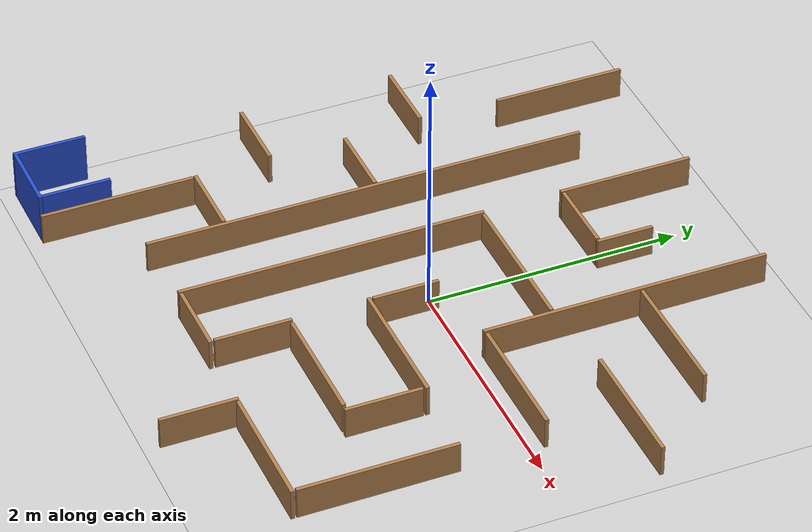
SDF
<sdf version="1.6">
 <world name="default">
  <light name="sun" type="directional">
   <pose>0 0 10 0 -0 0</pose>
   <diffuse>0.8 0.8 0.8 1</diffuse>
   <specular>0.2 0.2 0.2 1</specular>
   <attenuation>
    <range>1000</range>
    <constant>0.9</constant>
    <linear>0.01</linear>
    <quadratic>0.001</quadratic>
   </attenuation>
   <direction>-0.5 0.1 -0.9</direction>
  </light>
  <gravity>0 0 -9.8</gravity>
  <magnetic_field>6e-06 2.3e-05 -4.2e-05</magnetic_field>
  <atmosphere type="adiabatic"/>
  <physics name="default_physics" default="0" type="ode">
   <max_step_size>0.001</max_step_size>
   <real_time_factor>1</real_time_factor>
   <real_time_update_rate>1000</real_time_update_rate>
  </physics>
  <scene><ambient>0.4 0.4 0.4 1</ambient><background>0.7 0.7 0.7 1</background><shadows>1</shadows></scene>
  <spherical_coordinates>
   <surface_model>EARTH_WGS84</surface_model>
   <latitude_deg>0</latitude_deg>
   <longitude_deg>0</longitude_deg>
   <elevation>0</elevation>
   <heading_deg>0</heading_deg>
  </spherical_coordinates>
  <include><uri>model://maze_nav_floor</uri></include>
  <include><uri>model://maze_nav_walls</uri></include>
 </world>
</sdf>

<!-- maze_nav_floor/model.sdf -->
<sdf version="1.4">
<model name="maze_nav_floor">
  <static>true</static>
    <link name="link">
      <collision name="collision">
        <geometry>
          <plane>
            <normal>0 0 1</normal>
            <size>5.0 5.0</size>
          </plane>
        </geometry>
        <surface>
          <friction>
            <ode>
              <mu>100</mu>
              <mu2>50</mu2>
            </ode>
          </friction>
        </surface>
      </collision>
      <visual name="visual">
        <cast_shadows>false</cast_shadows>
        <geometry>
          <plane>
            <normal>0 0 1</normal>
            <size>5.0 5.0</size>
          </plane>
        </geometry>
        <material>
          <script>
            <uri>model://maze_nav_floor/materials/scripts</uri>
            <uri>model://maze_nav_floor/materials/textures</uri>
            <name>MazeNavFloor/Image</name>
          </script>
        </material>
      </visual>
    </link>
  </model>
</sdf>

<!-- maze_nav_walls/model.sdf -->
<sdf version='1.6'>
  <model name='maze_nav_walls'>
    <pose frame=''>0 0 0.125 0 0 0</pose>
    <link name='SZ_Right_Wall'>
      <pose frame=''>-2.37275 -2.09516 0.075 0 0 1.5708</pose>
      <collision name='Right_Wall_Collision'>
        <geometry>
          <box>
            <size>0.57 0.03 0.4</size>
          </box>
        </geometry>
      </collision>
      <visual name='Right_Wall_Visual'>
        <geometry>
          <box>
            <size>0.57 0.03 0.4</size>
          </box>
        </geometry>
        <material>
          <script>
            <uri>file://media/materials/scripts/gazebo.material</uri>
            <name>Gazebo/Blue</name>
          </script>
        </material>
      </visual>
    </link>
    <link name='SZ_Back_Wall'>
      <pose frame=''>-2.07275 -2.36516 0.075 0 0 0</pose>
      <collision name='Back_Wall_Collision'>
        <geometry>
          <box>
            <size>0.57 0.03 0.4</size>
          </box>
        </geometry>
      </collision>
      <visual name='Back_Wall_Visual'>
        <geometry>
          <box>
            <size>0.57 0.03 0.4</size>
          </box>
        </geometry>
        <material>
          <script>
            <uri>file://media/materials/scripts/gazebo.material</uri>
            <name>Gazebo/Blue</name>
          </script>
        </material>
      </visual>
    </link>
    <link name='SZ_Left_Wall'>
      <pose frame=''>-1.80275 -2.08016 0.075 0 0 1.5708</pose>
      <collision name='Left_Wall_Collision'>
        <geometry>
          <box>
            <size>0.54 0.03 0.4</size>
          </box>
        </geometry>
      </collision>
      <visual name='Left_Wall_Visual'>
        <geometry>
          <box>
            <size>0.54 0.03 0.4</size>
          </box>
        </geometry>
        <material>
          <script>
            <uri>file://media/materials/scripts/gazebo.material</uri>
            <name>Gazebo/Blue</name>
          </script>
        </material>
      </visual>
    </link>
    <link name='Wall_00'>
      <collision name='Wall_00_Collision'>
        <geometry>
          <box>
            <size>1.21 0.03 0.25</size>
          </box>
        </geometry>
        <pose frame=''>0 0 0 0 0 0</pose>
      </collision>
      <visual name='Wall_00_Visual'>
        <pose frame=''>0 0 0 0 0 0</pose>
        <geometry>
          <box>
            <size>1.21 0.03 0.25</size>
          </box>
        </geometry>
        <material>
          <script>
            <uri>file://media/materials/scripts/gazebo.material</uri>
            <name>Gazebo/Wood</name>
          </script>
          <ambient>1 1 1 1</ambient>
        </material>
      </visual>
      <pose frame=''>-1.762 -1.775 0 0 0 1.5708</pose>
    </link>
    <link name='Wall_01'>
      <collision name='Wall_01_Collision'>
        <geometry>
          <box>
            <size>0.60 0.03 0.25</size>
          </box>
        </geometry>
        <pose frame=''>0 0 0 0 0 0</pose>
      </collision>
      <visual name='Wall_01_Visual'>
        <pose frame=''>0 0 0 0 0 0</pose>
        <geometry>
          <box>
            <size>0.60 0.03 0.25</size>
          </box>
        </geometry>
        <material>
          <script>
            <uri>file://media/materials/scripts/gazebo.material</uri>
            <name>Gazebo/Wood</name>
          </script>
          <ambient>1 1 1 1</ambient>
        </material>
      </visual>
      <pose frame=''>-1.476 -1.148 0 0 0 0</pose>
    </link>
    <link name='Wall_02'>
      <collision name='Wall_02_Collision'>
        <geometry>
          <box>
            <size>3.52 0.03 0.25</size>
          </box>
        </geometry>
        <pose frame=''>0 0 0 0 0 0</pose>
      </collision>
      <visual name='Wall_02_Visual'>
        <pose frame=''>0 0 0 0 0 0</pose>
        <geometry>
          <box>
            <size>3.52 0.03 0.25</size>
          </box>
        </geometry>
        <material>
          <script>
            <uri>file://media/materials/scripts/gazebo.material</uri>
            <name>Gazebo/Wood</name>
          </script>
          <ambient>1 1 1 1</ambient>
        </material>
      </visual>
      <pose frame=''>-1.149 -0.013 0 0 0 1.5708</pose>
    </link>
    <link name='Wall_03'>
      <collision name='Wall_03_Collision'>
        <geometry>
          <box>
            <size>0.60 0.03 0.25</size>
          </box>
        </geometry>
        <pose frame=''>0 0 0 0 0 0</pose>
      </collision>
      <visual name='Wall_03_Visual'>
        <pose frame=''>0 0 0 0 0 0</pose>
        <geometry>
          <box>
            <size>0.60 0.03 0.25</size>
          </box>
        </geometry>
        <material>
          <script>
            <uri>file://media/materials/scripts/gazebo.material</uri>
            <name>Gazebo/Wood</name>
          </script>
          <ambient>1 1 1 1</ambient>
        </material>
      </visual>
      <pose frame=''>-2.085 -0.541 0 0 0 0</pose>
    </link>
    <link name='Wall_04'>
      <collision name='Wall_04_Collision'>
        <geometry>
          <box>
            <size>0.60 0.03 0.25</size>
          </box>
        </geometry>
        <pose frame=''>0 0 0 0 0 0</pose>
      </collision>
      <visual name='Wall_04_Visual'>
        <pose frame=''>0 0 0 0 0 0</pose>
        <geometry>
          <box>
            <size>0.60 0.03 0.25</size>
          </box>
        </geometry>
        <material>
          <script>
            <uri>file://media/materials/scripts/gazebo.material</uri>
            <name>Gazebo/Wood</name>
          </script>
          <ambient>1 1 1 1</ambient>
        </material>
      </visual>
      <pose frame=''>-1.473 0.067 0 0 0 0</pose>
    </link>
    <link name='Wall_05'>
      <collision name='Wall_05_Collision'>
        <geometry>
          <box>
            <size>0.60 0.03 0.25</size>
          </box>
        </geometry>
        <pose frame=''>0 0 0 0 0 0</pose>
      </collision>
      <visual name='Wall_05_Visual'>
        <pose frame=''>0 0 0 0 0 0</pose>
        <geometry>
          <box>
            <size>0.60 0.03 0.25</size>
          </box>
        </geometry>
        <material>
          <script>
            <uri>file://media/materials/scripts/gazebo.material</uri>
            <name>Gazebo/Wood</name>
          </script>
          <ambient>1 1 1 1</ambient>
        </material>
      </visual>
      <pose frame=''>-2.085 0.697 0 0 0 0</pose>
    </link>
    <link name='Wall_06'>
      <collision name='Wall_06_Collision'>
        <geometry>
          <box>
            <size>1.05 0.03 0.25</size>
          </box>
        </geometry>
        <pose frame=''>0 0 0 0 0 0</pose>
      </collision>
      <visual name='Wall_06_Visual'>
        <pose frame=''>0 0 0 0 0 0</pose>
        <geometry>
          <box>
            <size>1.05 0.03 0.25</size>
          </box>
        </geometry>
        <material>
          <script>
            <uri>file://media/materials/scripts/gazebo.material</uri>
            <name>Gazebo/Wood</name>
          </script>
          <ambient>1 1 1 1</ambient>
        </material>
      </visual>
      <pose frame=''>-1.761 1.856 0 0 0 1.5708</pose>
    </link>
    <link name='Wall_07'>
      <collision name='Wall_07_Collision'>
        <geometry>
          <box>
            <size>1.07 0.03 0.25</size>
          </box>
        </geometry>
        <pose frame=''>0 0 0 0 0 0</pose>
      </collision>
      <visual name='Wall_07_Visual'>
        <pose frame=''>0 0 0 0 0 0</pose>
        <geometry>
          <box>
            <size>1.07 0.03 0.25</size>
          </box>
        </geometry>
        <material>
          <script>
            <uri>file://media/materials/scripts/gazebo.material</uri>
            <name>Gazebo/Wood</name>
          </script>
          <ambient>1 1 1 1</ambient>
        </material>
      </visual>
      <pose frame=''>-0.535 1.84 0 0 0 1.5708</pose>
    </link>
    <link name='Wall_08'>
      <collision name='Wall_08_Collision'>
        <geometry>
          <box>
            <size>0.60 0.03 0.25</size>
          </box>
        </geometry>
        <pose frame=''>0 0 0 0 0 0</pose>
      </collision>
      <visual name='Wall_08_Visual'>
        <pose frame=''>0 0 0 0 0 0</pose>
        <geometry>
          <box>
            <size>0.60 0.03 0.25</size>
          </box>
        </geometry>
        <material>
          <script>
            <uri>file://media/materials/scripts/gazebo.material</uri>
            <name>Gazebo/Wood</name>
          </script>
          <ambient>1 1 1 1</ambient>
        </material>
      </visual>
      <pose frame=''>-0.212 1.320 0 0 0 0</pose>
    </link>
    <link name='Wall_09'>
      <collision name='Wall_09_Collision'>
        <geometry>
          <box>
            <size>0.45 0.03 0.25</size>
          </box>
        </geometry>
        <pose frame=''>0 0 0 0 0 0</pose>
      </collision>
      <visual name='Wall_09_Visual'>
        <pose frame=''>0 0 0 0 0 0</pose>
        <geometry>
          <box>
            <size>0.45 0.03 0.25</size>
          </box>
        </geometry>
        <material>
          <script>
            <uri>file://media/materials/scripts/gazebo.material</uri>
            <name>Gazebo/Wood</name>
          </script>
          <ambient>1 1 1 1</ambient>
        </material>
      </visual>
      <pose frame=''>0.113 1.530 0 0 0 1.5708</pose>
    </link>
    <link name='Wall_0A'>
      <collision name='Wall_0A_Collision'>
        <geometry>
          <box>
            <size>2.43 0.03 0.25</size>
          </box>
        </geometry>
        <pose frame=''>0 0 0 0 0 0</pose>
      </collision>
      <visual name='Wall_0A_Visual'>
        <pose frame=''>0 0 0 0 0 0</pose>
        <geometry>
          <box>
            <size>2.43 0.03 0.25</size>
          </box>
        </geometry>
        <material>
          <script>
            <uri>file://media/materials/scripts/gazebo.material</uri>
            <name>Gazebo/Wood</name>
          </script>
          <ambient>1 1 1 1</ambient>
        </material>
      </visual>
      <pose frame=''>-0.535 -0.538 0 0 0 1.5708</pose>
    </link>
    <link name='Wall_0B'>
      <collision name='Wall_0B_Collision'>
        <geometry>
          <box>
            <size>0.60 0.03 0.25</size>
          </box>
        </geometry>
        <pose frame=''>0 0 0 0 0 0</pose>
      </collision>
      <visual name='Wall_0B_Visual'>
        <pose frame=''>0 0 0 0 0 0</pose>
        <geometry>
          <box>
            <size>0.60 0.03 0.25</size>
          </box>
        </geometry>
        <material>
          <script>
            <uri>file://media/materials/scripts/gazebo.material</uri>
            <name>Gazebo/Wood</name>
          </script>
          <ambient>1 1 1 1</ambient>
        </material>
      </visual>
      <pose frame=''>-0.212 -1.738 0 0 0 0</pose>
    </link>
    <link name='Wall_0C'>
      <collision name='Wall_0C_Collision'>
        <geometry>
          <box>
            <size>0.60 0.03 0.25</size>
          </box>
        </geometry>
        <pose frame=''>0 0 0 0 0 0</pose>
      </collision>
      <visual name='Wall_0C_Visual'>
        <pose frame=''>0 0 0 0 0 0</pose>
        <geometry>
          <box>
            <size>0.60 0.03 0.25</size>
          </box>
        </geometry>
        <material>
          <script>
            <uri>file://media/materials/scripts/gazebo.material</uri>
            <name>Gazebo/Wood</name>
          </script>
          <ambient>1 1 1 1</ambient>
        </material>
      </visual>
      <pose frame=''>0.073 -1.406 0 0 0 1.5708</pose>
    </link>
    <link name='Wall_0D'>
      <collision name='Wall_0D_Collision'>
        <geometry>
          <box>
            <size>0.98 0.03 0.25</size>
          </box>
        </geometry>
        <pose frame=''>0 0 0 0 0 0</pose>
      </collision>
      <visual name='Wall_0D_Visual'>
        <pose frame=''>0 0 0 0 0 0</pose>
        <geometry>
          <box>
            <size>0.98 0.03 0.25</size>
          </box>
        </geometry>
        <material>
          <script>
            <uri>file://media/materials/scripts/gazebo.material</uri>
            <name>Gazebo/Wood</name>
          </script>
          <ambient>1 1 1 1</ambient>
        </material>
      </visual>
      <pose frame=''>0.602 -1.121 0 0 0 0</pose>
    </link>
    <link name='Wall_0E'>
      <collision name='Wall_0E_Collision'>
        <geometry>
          <box>
            <size>0.60 0.03 0.25</size>
          </box>
        </geometry>
        <pose frame=''>0 0 0 0 0 0</pose>
      </collision>
      <visual name='Wall_0E_Visual'>
        <pose frame=''>0 0 0 0 0 0</pose>
        <geometry>
          <box>
            <size>0.60 0.03 0.25</size>
          </box>
        </geometry>
        <material>
          <script>
            <uri>file://media/materials/scripts/gazebo.material</uri>
            <name>Gazebo/Wood</name>
          </script>
          <ambient>1 1 1 1</ambient>
        </material>
      </visual>
      <pose frame=''>1.139 -0.836 0 0 0 1.5708</pose>
    </link>
    <link name='Wall_0F'>
      <collision name='Wall_0F_Collision'>
        <geometry>
          <box>
            <size>1.09 0.03 0.25</size>
          </box>
        </geometry>
        <pose frame=''>0 0 0 0 0 0</pose>
      </collision>
      <visual name='Wall_0F_Visual'>
        <pose frame=''>0 0 0 0 0 0</pose>
        <geometry>
          <box>
            <size>1.09 0.03 0.25</size>
          </box>
        </geometry>
        <material>
          <script>
            <uri>file://media/materials/scripts/gazebo.material</uri>
            <name>Gazebo/Wood</name>
          </script>
          <ambient>1 1 1 1</ambient>
        </material>
      </visual>
      <pose frame=''>0.609 -0.505 0 0 0 0</pose>
    </link>
    <link name='Wall_10'>
      <collision name='Wall_10_Collision'>
        <geometry>
          <box>
            <size>0.52 0.03 0.25</size>
          </box>
        </geometry>
        <pose frame=''>0 0 0 0 0 0</pose>
      </collision>
      <visual name='Wall_10_Visual'>
        <pose frame=''>0 0 0 0 0 0</pose>
        <geometry>
          <box>
            <size>0.52 0.03 0.25</size>
          </box>
        </geometry>
        <material>
          <script>
            <uri>file://media/materials/scripts/gazebo.material</uri>
            <name>Gazebo/Wood</name>
          </script>
          <ambient>1 1 1 1</ambient>
        </material>
      </visual>
      <pose frame=''>0.079 -0.217 0 0 0 1.5708</pose>
    </link>
    <link name='Wall_11'>
      <collision name='Wall_11_Collision'>
        <geometry>
          <box>
            <size>1.21 0.03 0.25</size>
          </box>
        </geometry>
        <pose frame=''>0 0 0 0 0 0</pose>
      </collision>
      <visual name='Wall_11_Visual'>
        <pose frame=''>0 0 0 0 0 0</pose>
        <geometry>
          <box>
            <size>1.21 0.03 0.25</size>
          </box>
        </geometry>
        <material>
          <script>
            <uri>file://media/materials/scripts/gazebo.material</uri>
            <name>Gazebo/Wood</name>
          </script>
          <ambient>1 1 1 1</ambient>
        </material>
      </visual>
      <pose frame=''>0.099 0.662 0 0 0 0</pose>
    </link>
    <link name='Wall_12'>
      <collision name='Wall_12_Collision'>
        <geometry>
          <box>
            <size>2.27 0.03 0.25</size>
          </box>
        </geometry>
        <pose frame=''>0 0 0 0 0 0</pose>
      </collision>
      <visual name='Wall_12_Visual'>
        <pose frame=''>0 0 0 0 0 0</pose>
        <geometry>
          <box>
            <size>2.27 0.03 0.25</size>
          </box>
        </geometry>
        <material>
          <script>
            <uri>file://media/materials/scripts/gazebo.material</uri>
            <name>Gazebo/Wood</name>
          </script>
          <ambient>1 1 1 1</ambient>
        </material>
      </visual>
      <pose frame=''>0.730 1.245 0 0 0 1.5708</pose>
    </link>
    <link name='Wall_13'>
      <collision name='Wall_13_Collision'>
        <geometry>
          <box>
            <size>0.60 0.03 0.25</size>
          </box>
        </geometry>
        <pose frame=''>0 0 0 0 0 0</pose>
      </collision>
      <visual name='Wall_13_Visual'>
        <pose frame=''>0 0 0 0 0 0</pose>
        <geometry>
          <box>
            <size>0.60 0.03 0.25</size>
          </box>
        </geometry>
        <material>
          <script>
            <uri>file://media/materials/scripts/gazebo.material</uri>
            <name>Gazebo/Wood</name>
          </script>
          <ambient>1 1 1 1</ambient>
        </material>
      </visual>
      <pose frame=''>0.735 -2.076 0 0 0 1.5708</pose>
    </link>
    <link name='Wall_14'>
      <collision name='Wall_14_Collision'>
        <geometry>
          <box>
            <size>1.03 0.03 0.25</size>
          </box>
        </geometry>
        <pose frame=''>0 0 0 0 0 0</pose>
      </collision>
      <visual name='Wall_14_Visual'>
        <pose frame=''>0 0 0 0 0 0</pose>
        <geometry>
          <box>
            <size>1.03 0.03 0.25</size>
          </box>
        </geometry>
        <material>
          <script>
            <uri>file://media/materials/scripts/gazebo.material</uri>
            <name>Gazebo/Wood</name>
          </script>
          <ambient>1 1 1 1</ambient>
        </material>
      </visual>
      <pose frame=''>1.279 -1.791 0 0 0 0</pose>
    </link>
    <link name='Wall_15'>
      <collision name='Wall_15_Collision'>
        <geometry>
          <box>
            <size>1.23 0.03 0.25</size>
          </box>
        </geometry>
        <pose frame=''>0 0 0 0 0 0</pose>
      </collision>
      <visual name='Wall_15_Visual'>
        <pose frame=''>0 0 0 0 0 0</pose>
        <geometry>
          <box>
            <size>1.23 0.03 0.25</size>
          </box>
        </geometry>
        <material>
          <script>
            <uri>file://media/materials/scripts/gazebo.material</uri>
            <name>Gazebo/Wood</name>
          </script>
          <ambient>1 1 1 1</ambient>
        </material>
      </visual>
      <pose frame=''>1.779 -1.146 0 0 0 1.5708</pose>
    </link>
    <link name='Wall_16'>
      <collision name='Wall_16_Collision'>
        <geometry>
          <box>
            <size>1.03 0.03 0.25</size>
          </box>
        </geometry>
        <pose frame=''>0 0 0 0 0 0</pose>
      </collision>
      <visual name='Wall_16_Visual'>
        <pose frame=''>0 0 0 0 0 0</pose>
        <geometry>
          <box>
            <size>1.03 0.03 0.25</size>
          </box>
        </geometry>
        <material>
          <script>
            <uri>file://media/materials/scripts/gazebo.material</uri>
            <name>Gazebo/Wood</name>
          </script>
          <ambient>1 1 1 1</ambient>
        </material>
      </visual>
      <pose frame=''>1.279 0.125 0 0 0 0</pose>
    </link>
    <link name='Wall_17'>
      <collision name='Wall_17_Collision'>
        <geometry>
          <box>
            <size>1.03 0.03 0.25</size>
          </box>
        </geometry>
        <pose frame=''>0 0 0 0 0 0</pose>
      </collision>
      <visual name='Wall_17_Visual'>
        <pose frame=''>0 0 0 0 0 0</pose>
        <geometry>
          <box>
            <size>1.03 0.03 0.25</size>
          </box>
        </geometry>
        <material>
          <script>
            <uri>file://media/materials/scripts/gazebo.material</uri>
            <name>Gazebo/Wood</name>
          </script>
          <ambient>1 1 1 1</ambient>
        </material>
      </visual>
      <pose frame=''>1.855 0.747 0 0 0 0</pose>
    </link>
    <link name='Wall_18'>
      <collision name='Wall_18_Collision'>
        <geometry>
          <box>
            <size>1.03 0.03 0.25</size>
          </box>
        </geometry>
        <pose frame=''>0 0 0 0 0 0</pose>
      </collision>
      <visual name='Wall_18_Visual'>
        <pose frame=''>0 0 0 0 0 0</pose>
        <geometry>
          <box>
            <size>1.03 0.03 0.25</size>
          </box>
        </geometry>
        <material>
          <script>
            <uri>file://media/materials/scripts/gazebo.material</uri>
            <name>Gazebo/Wood</name>
          </script>
          <ambient>1 1 1 1</ambient>
        </material>
      </visual>
      <pose frame=''>1.274 1.360 0 0 0 0</pose>
    </link>
    <static>1</static>
  </model>
</sdf>
